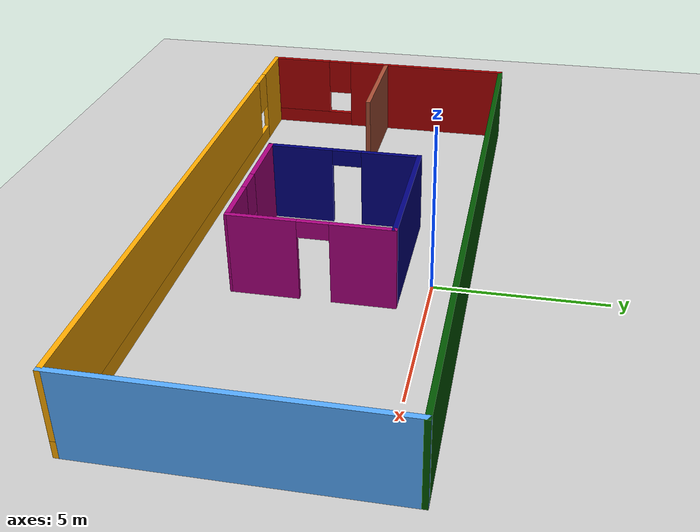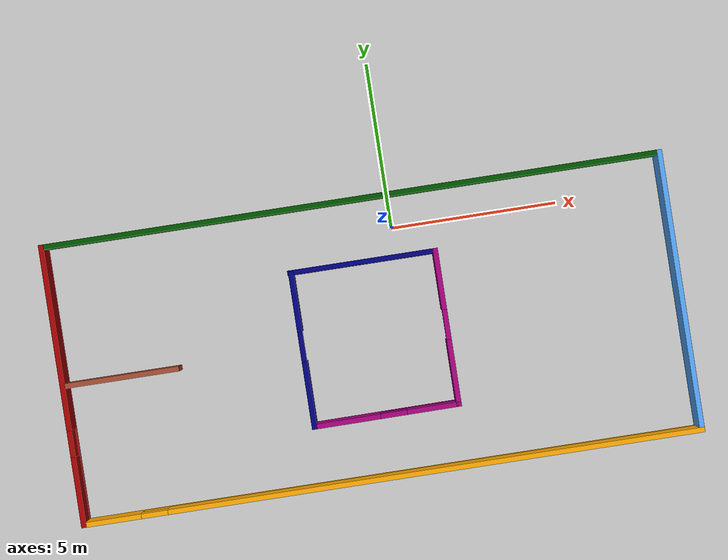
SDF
<sdf version="1.6">
 <world name="default">
  <light name="sun" type="directional">
   <pose>0 0 10 0 -0 0</pose>
   <diffuse>0.8 0.8 0.8 1</diffuse>
   <specular>0.2 0.2 0.2 1</specular>
   <attenuation>
    <range>1000</range>
    <constant>0.9</constant>
    <linear>0.01</linear>
    <quadratic>0.001</quadratic>
   </attenuation>
   <direction>-0.5 0.1 -0.9</direction>
  </light>
  <model name="ground_plane">
   <static>1</static>
   <link name="link">
    <collision name="collision">
     <geometry><plane><normal>0 0 1</normal><size>100 100</size></plane></geometry>
     <surface><friction><ode><mu>100</mu><mu2>50</mu2></ode></friction></surface>
    </collision>
    <visual name="visual">
     <cast_shadows>0</cast_shadows>
     <geometry><plane><normal>0 0 1</normal><size>100 100</size></plane></geometry>
     <material>
      <script><uri>file://media/materials/scripts/gazebo.material</uri><name>Gazebo/Grey</name></script>
     </material>
    </visual>
   </link>
  </model>
  <gravity>0 0 -9.8</gravity>
  <magnetic_field>6e-06 2.3e-05 -4.2e-05</magnetic_field>
  <atmosphere type="adiabatic"/>
  <physics name="default_physics" default="0" type="ode">
   <max_step_size>0.001</max_step_size>
   <real_time_factor>1</real_time_factor>
   <real_time_update_rate>1000</real_time_update_rate>
  </physics>
  <scene><ambient>0.4 0.4 0.4 1</ambient><background>0.7 0.7 0.7 1</background><shadows>1</shadows></scene>
  <spherical_coordinates>
   <surface_model>EARTH_WGS84</surface_model>
   <latitude_deg>0</latitude_deg>
   <longitude_deg>0</longitude_deg>
   <elevation>0</elevation>
   <heading_deg>0</heading_deg>
  </spherical_coordinates>
  <model name="mini">
   <pose>-1.10438 -3.17864 0 0 -0 0</pose>
   <link name="Wall_0">
    <pose>-9.3 0 0 0 0 -1.5708</pose>
    <visual name="Wall_0_Visual_0">
     <pose>-1.45581 0 1.25 0 -0 0</pose>
     <geometry><box><size>5.58839 0.15 2.5</size></box></geometry>
     <material>
      <script><uri>file://media/materials/scripts/gazebo.material</uri><name>Gazebo/Grey</name></script>
      <ambient>0.666667 0 0 1</ambient>
     </material>
     <meta><layer>0</layer></meta>
    </visual>
    <collision name="Wall_0_Collision_0">
     <geometry><box><size>5.58839 0.15 2.5</size></box></geometry>
     <pose>-1.45581 0 1.25 0 -0 0</pose>
    </collision>
    <visual name="Wall_0_Visual_1">
     <pose>2.7942 0 0.25 0 -0 0</pose>
     <geometry><box><size>2.91161 0.15 0.5</size></box></geometry>
     <material>
      <script><uri>file://media/materials/scripts/gazebo.material</uri><name>Gazebo/Grey</name></script>
      <ambient>0.666667 0 0 1</ambient>
     </material>
     <meta><layer>0</layer></meta>
    </visual>
    <collision name="Wall_0_Collision_1">
     <geometry><box><size>2.91161 0.15 0.5</size></box></geometry>
     <pose>2.7942 0 0.25 0 -0 0</pose>
    </collision>
    <visual name="Wall_0_Visual_2">
     <pose>3.1942 0 1.5 0 -0 0</pose>
     <geometry><box><size>2.11161 0.15 2</size></box></geometry>
     <material>
      <script><uri>file://media/materials/scripts/gazebo.material</uri><name>Gazebo/Grey</name></script>
      <ambient>0.666667 0 0 1</ambient>
     </material>
     <meta><layer>0</layer></meta>
    </visual>
    <collision name="Wall_0_Collision_2">
     <geometry><box><size>2.11161 0.15 2</size></box></geometry>
     <pose>3.1942 0 1.5 0 -0 0</pose>
    </collision>
    <visual name="Wall_0_Visual_3">
     <pose>1.73839 0 1.9 0 -0 0</pose>
     <geometry><box><size>0.8 0.15 1.2</size></box></geometry>
     <material>
      <script><uri>file://media/materials/scripts/gazebo.material</uri><name>Gazebo/Grey</name></script>
      <ambient>0.666667 0 0 1</ambient>
     </material>
     <meta><layer>0</layer></meta>
    </visual>
    <collision name="Wall_0_Collision_3">
     <geometry><box><size>0.8 0.15 1.2</size></box></geometry>
     <pose>1.73839 0 1.9 0 -0 0</pose>
    </collision>
   </link>
   <link name="Wall_1">
    <pose>0 -4.175 0 0 -0 0</pose>
    <visual name="Wall_1_Visual_0">
     <pose>-8.47148 0 1.25 0 -0 0</pose>
     <geometry><box><size>1.80704 0.15 2.5</size></box></geometry>
     <material>
      <script><uri>file://media/materials/scripts/gazebo.material</uri><name>Gazebo/Grey</name></script>
      <ambient>1 0.666667 0 1</ambient>
     </material>
     <meta><layer>0</layer></meta>
    </visual>
    <collision name="Wall_1_Collision_0">
     <geometry><box><size>1.80704 0.15 2.5</size></box></geometry>
     <pose>-8.47148 0 1.25 0 -0 0</pose>
    </collision>
    <visual name="Wall_1_Visual_1">
     <pose>0.903519 0 0.25 0 -0 0</pose>
     <geometry><box><size>16.943 0.15 0.5</size></box></geometry>
     <material>
      <script><uri>file://media/materials/scripts/gazebo.material</uri><name>Gazebo/Grey</name></script>
      <ambient>1 0.666667 0 1</ambient>
     </material>
     <meta><layer>0</layer></meta>
    </visual>
    <collision name="Wall_1_Collision_1">
     <geometry><box><size>16.943 0.15 0.5</size></box></geometry>
     <pose>0.903519 0 0.25 0 -0 0</pose>
    </collision>
    <visual name="Wall_1_Visual_2">
     <pose>1.30352 0 1.5 0 -0 0</pose>
     <geometry><box><size>16.143 0.15 2</size></box></geometry>
     <material>
      <script><uri>file://media/materials/scripts/gazebo.material</uri><name>Gazebo/Grey</name></script>
      <ambient>1 0.666667 0 1</ambient>
     </material>
     <meta><layer>0</layer></meta>
    </visual>
    <collision name="Wall_1_Collision_2">
     <geometry><box><size>16.143 0.15 2</size></box></geometry>
     <pose>1.30352 0 1.5 0 -0 0</pose>
    </collision>
    <visual name="Wall_1_Visual_3">
     <pose>-7.16796 0 1.9 0 -0 0</pose>
     <geometry><box><size>0.8 0.15 1.2</size></box></geometry>
     <material>
      <script><uri>file://media/materials/scripts/gazebo.material</uri><name>Gazebo/Grey</name></script>
      <ambient>1 0.666667 0 1</ambient>
     </material>
     <meta><layer>0</layer></meta>
    </visual>
    <collision name="Wall_1_Collision_3">
     <geometry><box><size>0.8 0.15 1.2</size></box></geometry>
     <pose>-7.16796 0 1.9 0 -0 0</pose>
    </collision>
   </link>
   <link name="Wall_12">
    <collision name="Wall_12_Collision">
     <geometry><box><size>3.5 0.15 2.5</size></box></geometry>
     <pose>0 0 1.25 0 -0 0</pose>
    </collision>
    <visual name="Wall_12_Visual">
     <pose>0 0 1.25 0 -0 0</pose>
     <geometry><box><size>3.5 0.15 2.5</size></box></geometry>
     <material>
      <script><uri>file://media/materials/scripts/gazebo.material</uri><name>Gazebo/Bricks</name></script>
      <ambient>0 0.333333 0 1</ambient>
     </material>
     <meta><layer>0</layer></meta>
    </visual>
    <pose>-7.54455 -0.008623 0 0 -0 0</pose>
   </link>
   <link name="Wall_2">
    <collision name="Wall_2_Collision">
     <geometry><box><size>8.5 0.15 2.5</size></box></geometry>
     <pose>0 0 1.25 0 -0 0</pose>
    </collision>
    <visual name="Wall_2_Visual">
     <pose>0 0 1.25 0 -0 0</pose>
     <geometry><box><size>8.5 0.15 2.5</size></box></geometry>
     <material>
      <script><uri>file://media/materials/scripts/gazebo.material</uri><name>Gazebo/Grey</name></script>
      <ambient>0.333333 0.666667 1 1</ambient>
     </material>
     <meta><layer>0</layer></meta>
    </visual>
    <pose>9.3 0 0 0 -0 1.5708</pose>
   </link>
   <link name="Wall_3">
    <collision name="Wall_3_Collision">
     <geometry><box><size>18.75 0.15 2.5</size></box></geometry>
     <pose>0 0 1.25 0 -0 0</pose>
    </collision>
    <visual name="Wall_3_Visual">
     <pose>0 0 1.25 0 -0 0</pose>
     <geometry><box><size>18.75 0.15 2.5</size></box></geometry>
     <material>
      <script><uri>file://media/materials/scripts/gazebo.material</uri><name>Gazebo/Grey</name></script>
      <ambient>0 0.333333 0 1</ambient>
     </material>
     <meta><layer>0</layer></meta>
    </visual>
    <pose>0 4.175 0 0 -0 3.14159</pose>
   </link>
   <link name="Wall_5">
    <pose>-2.07923 -0.035789 0 0 0 -1.5708</pose>
    <visual name="Wall_5_Visual_0">
     <pose>-1.46631 0 1.25 0 -0 0</pose>
     <geometry><box><size>1.81738 0.15 2.5</size></box></geometry>
     <material>
      <script><uri>file://media/materials/scripts/gazebo.material</uri><name>Gazebo/Grey</name></script>
      <ambient>0 0 0.498039 1</ambient>
     </material>
     <meta><layer>0</layer></meta>
    </visual>
    <collision name="Wall_5_Collision_0">
     <geometry><box><size>1.81738 0.15 2.5</size></box></geometry>
     <pose>-1.46631 0 1.25 0 -0 0</pose>
    </collision>
    <visual name="Wall_5_Visual_1">
     <pose>1.35869 0 1.25 0 -0 0</pose>
     <geometry><box><size>2.03262 0.15 2.5</size></box></geometry>
     <material>
      <script><uri>file://media/materials/scripts/gazebo.material</uri><name>Gazebo/Grey</name></script>
      <ambient>0 0 0.498039 1</ambient>
     </material>
     <meta><layer>0</layer></meta>
    </visual>
    <collision name="Wall_5_Collision_1">
     <geometry><box><size>2.03262 0.15 2.5</size></box></geometry>
     <pose>1.35869 0 1.25 0 -0 0</pose>
    </collision>
    <visual name="Wall_5_Visual_2">
     <pose>-0.107621 0 2.25 0 -0 0</pose>
     <geometry><box><size>0.9 0.15 0.5</size></box></geometry>
     <material>
      <script><uri>file://media/materials/scripts/gazebo.material</uri><name>Gazebo/Grey</name></script>
      <ambient>0 0 0.498039 1</ambient>
     </material>
     <meta><layer>0</layer></meta>
    </visual>
    <collision name="Wall_5_Collision_2">
     <geometry><box><size>0.9 0.15 0.5</size></box></geometry>
     <pose>-0.107621 0 2.25 0 -0 0</pose>
    </collision>
   </link>
   <link name="Wall_6">
    <pose>0.105829 -2.32573 0 0 -0 0.004645</pose>
    <visual name="Wall_6_Visual_0">
     <pose>-1.21575 0 1.25 0 -0 0</pose>
     <geometry><box><size>2.04844 0.15 2.5</size></box></geometry>
     <material>
      <script><uri>file://media/materials/scripts/gazebo.material</uri><name>Gazebo/Grey</name></script>
      <ambient>0.666667 0 0.498039 1</ambient>
     </material>
     <meta><layer>0</layer></meta>
    </visual>
    <collision name="Wall_6_Collision_0">
     <geometry><box><size>2.04844 0.15 2.5</size></box></geometry>
     <pose>-1.21575 0 1.25 0 -0 0</pose>
    </collision>
    <visual name="Wall_6_Visual_1">
     <pose>1.02422 0 0.25 0 -0 0</pose>
     <geometry><box><size>2.43149 0.15 0.5</size></box></geometry>
     <material>
      <script><uri>file://media/materials/scripts/gazebo.material</uri><name>Gazebo/Grey</name></script>
      <ambient>0.666667 0 0.498039 1</ambient>
     </material>
     <meta><layer>0</layer></meta>
    </visual>
    <collision name="Wall_6_Collision_1">
     <geometry><box><size>2.43149 0.15 0.5</size></box></geometry>
     <pose>1.02422 0 0.25 0 -0 0</pose>
    </collision>
    <visual name="Wall_6_Visual_2">
     <pose>1.42422 0 1.5 0 -0 0</pose>
     <geometry><box><size>1.63149 0.15 2</size></box></geometry>
     <material>
      <script><uri>file://media/materials/scripts/gazebo.material</uri><name>Gazebo/Grey</name></script>
      <ambient>0.666667 0 0.498039 1</ambient>
     </material>
     <meta><layer>0</layer></meta>
    </visual>
    <collision name="Wall_6_Collision_2">
     <geometry><box><size>1.63149 0.15 2</size></box></geometry>
     <pose>1.42422 0 1.5 0 -0 0</pose>
    </collision>
    <visual name="Wall_6_Visual_3">
     <pose>0.208475 0 1.9 0 -0 0</pose>
     <geometry><box><size>0.8 0.15 1.2</size></box></geometry>
     <material>
      <script><uri>file://media/materials/scripts/gazebo.material</uri><name>Gazebo/Grey</name></script>
      <ambient>0.666667 0 0.498039 1</ambient>
     </material>
     <meta><layer>0</layer></meta>
    </visual>
    <collision name="Wall_6_Collision_3">
     <geometry><box><size>0.8 0.15 1.2</size></box></geometry>
     <pose>0.208475 0 1.9 0 -0 0</pose>
    </collision>
   </link>
   <link name="Wall_7">
    <pose>2.27077 -0.011357 0 0 -0 1.5708</pose>
    <visual name="Wall_7_Visual_0">
     <pose>-1.37306 0 1.25 0 -0 0</pose>
     <geometry><box><size>2.01251 0.15 2.5</size></box></geometry>
     <material>
      <script><uri>file://media/materials/scripts/gazebo.material</uri><name>Gazebo/Grey</name></script>
      <ambient>0.666667 0 0.498039 1</ambient>
     </material>
     <meta><layer>0</layer></meta>
    </visual>
    <collision name="Wall_7_Collision_0">
     <geometry><box><size>2.01251 0.15 2.5</size></box></geometry>
     <pose>-1.37306 0 1.25 0 -0 0</pose>
    </collision>
    <visual name="Wall_7_Visual_1">
     <pose>1.45625 0 1.25 0 -0 0</pose>
     <geometry><box><size>1.84613 0.15 2.5</size></box></geometry>
     <material>
      <script><uri>file://media/materials/scripts/gazebo.material</uri><name>Gazebo/Grey</name></script>
      <ambient>0.666667 0 0.498039 1</ambient>
     </material>
     <meta><layer>0</layer></meta>
    </visual>
    <collision name="Wall_7_Collision_1">
     <geometry><box><size>1.84613 0.15 2.5</size></box></geometry>
     <pose>1.45625 0 1.25 0 -0 0</pose>
    </collision>
    <visual name="Wall_7_Visual_2">
     <pose>0.083189 0 2.25 0 -0 0</pose>
     <geometry><box><size>0.9 0.15 0.5</size></box></geometry>
     <material>
      <script><uri>file://media/materials/scripts/gazebo.material</uri><name>Gazebo/Grey</name></script>
      <ambient>0.666667 0 0.498039 1</ambient>
     </material>
     <meta><layer>0</layer></meta>
    </visual>
    <collision name="Wall_7_Collision_2">
     <geometry><box><size>0.9 0.15 0.5</size></box></geometry>
     <pose>0.083189 0 2.25 0 -0 0</pose>
    </collision>
   </link>
   <link name="Wall_8">
    <collision name="Wall_8_Collision">
     <geometry><box><size>4.5 0.15 2.5</size></box></geometry>
     <pose>0 0 1.25 0 -0 0</pose>
    </collision>
    <visual name="Wall_8_Visual">
     <pose>0 0 1.25 0 -0 0</pose>
     <geometry><box><size>4.5 0.15 2.5</size></box></geometry>
     <material>
      <script><uri>file://media/materials/scripts/gazebo.material</uri><name>Gazebo/Grey</name></script>
      <ambient>0 0 0.498039 1</ambient>
     </material>
     <meta><layer>0</layer></meta>
    </visual>
    <pose>0.075659 2.29296 0 0 -0 3.14159</pose>
   </link>
   <static>1</static>
  </model>
 </world>
</sdf>
